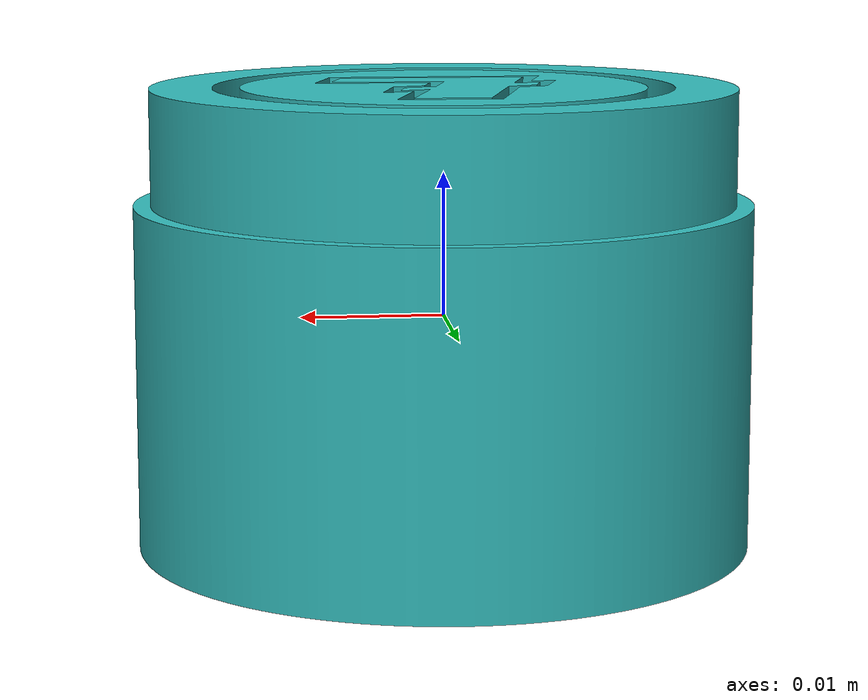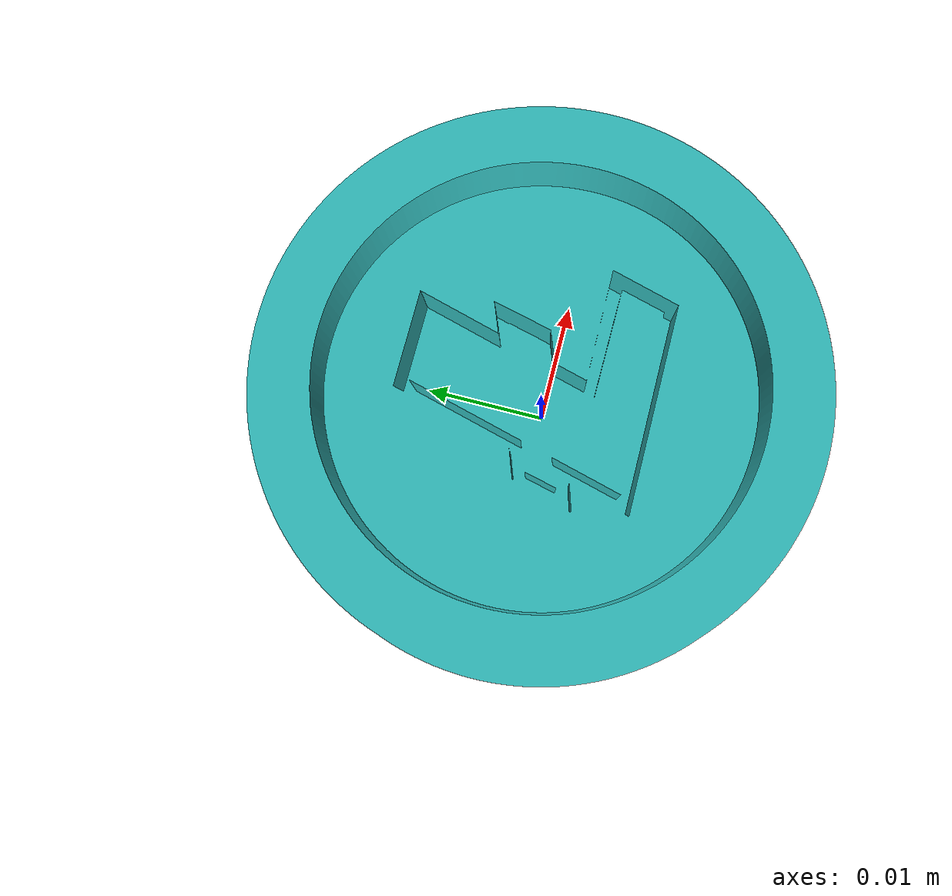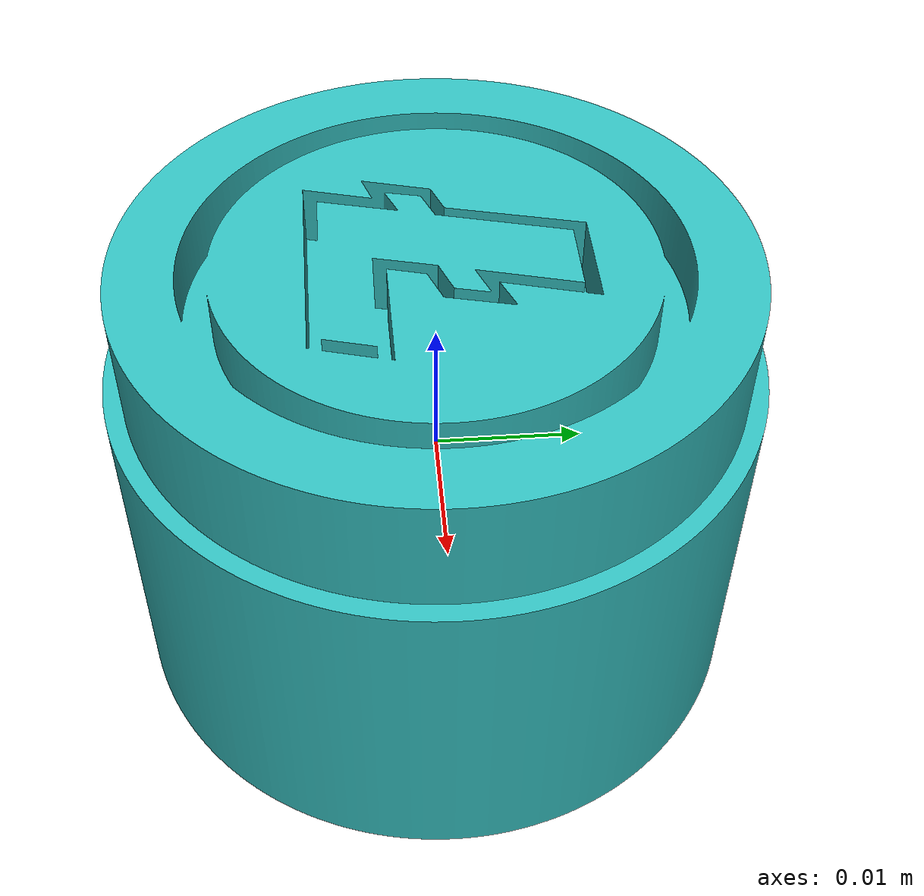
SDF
<?xml version="1.0" ?>
<sdf version="1.5">
  <model name="litecoin">
    <link name="litecoin_link">
      <pose>0 0 0 0 0 0</pose>
      <inertial>
        <mass>0.010</mass>
        <inertia>
          <ixx>0.0000014233</ixx>
          <ixy>0</ixy>
          <ixz>0</ixz>
          <iyy>0.0000014233</iyy>
          <iyz>0</iyz>
          <izz>0.00000242</izz>
        </inertia>
      </inertial>
      <collision name="collision">
        <geometry>
          <cylinder>
            <radius>0.022000</radius>
            <length>0.032000</length>
          </cylinder>
        </geometry>
	<surface>
	  <friction>
	    <ode>
	      <mu>500.0</mu>
	      <mu2>500.0</mu2>
	      <kp>1000000.0</kp>
	      <kd>1.0</kd>
	      <minDepth>0.001</minDepth>
	    </ode>
	  </friction>
	</surface>
      </collision>
      <visual name="visual">
	<pose frame=''>0 0 -0.016 0 -0 0</pose>
        <geometry>
          <mesh>
            <scale>0.0004 0.0004 0.004</scale>
            <uri>model://litecoin/meshes/litecoin.stl</uri>
          </mesh>
  	</geometry>
	<material>
	  <script>
	    <name>Gazebo/Turquoise</name>
	  </script>
	</material>
      </visual>
    </link>
  </model>
</sdf>
